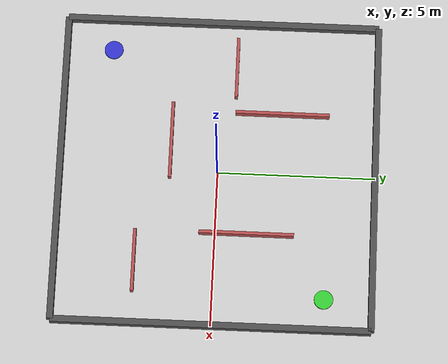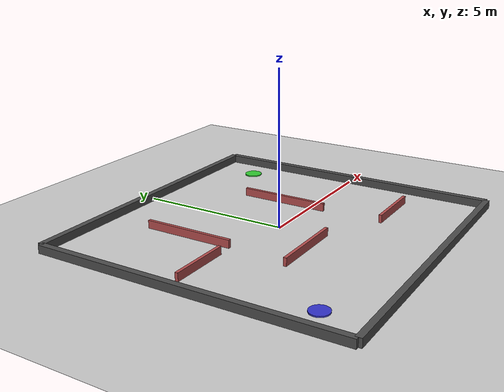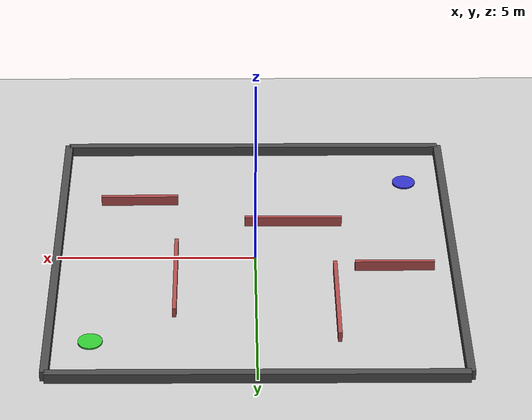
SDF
<?xml version="1.0" ?>
<!-- TurtleBot3 Maze Environment - Compatible with Gazebo 11 and newer -->
<sdf version="1.6">
  <world name="maze">
    <!-- Physics configuration - compatible with both Gazebo 11 and 9+ -->
    <physics type="ode">
      <max_step_size>0.001</max_step_size>
      <real_time_factor>1</real_time_factor>
      <real_time_update_rate>1000</real_time_update_rate>
    </physics>

    <!-- Gravity -->
    <gravity>0 0 -9.8</gravity>

    <!-- Magnetic field -->
    <magnetic_field>0 0 0</magnetic_field>

    <!-- Atmosphere -->
    <atmosphere type="adiabatic"/>

    <!-- Include standard models -->
    <include>
      <uri>model://sun</uri>
    </include>

    <include>
      <uri>model://ground_plane</uri>
    </include>

    <!-- Outer boundary walls -->
    <!-- North wall -->
    <model name="wall_north">
      <pose>0.0 5.0 0.0 0 0 0</pose>
      <static>true</static>
      <link name="link">
        <inertial>
          <mass>1</mass>
          <inertia>
            <ixx>1</ixx>
            <iyy>1</iyy>
            <izz>1</izz>
          </inertia>
        </inertial>
        <collision name="collision">
          <geometry>
            <box>
              <size>10.0 0.2 0.5</size>
            </box>
          </geometry>
          <surface>
            <friction>
              <ode>
                <mu>0.5</mu>
                <mu2>0.5</mu2>
              </ode>
            </friction>
          </surface>
        </collision>
        <visual name="visual">
          <geometry>
            <box>
              <size>10.0 0.2 0.5</size>
            </box>
          </geometry>
          <material>
            <ambient>0.3 0.3 0.3 1</ambient>
            <diffuse>0.3 0.3 0.3 1</diffuse>
            <specular>0.1 0.1 0.1 1</specular>
            <emissive>0 0 0 0</emissive>
          </material>
        </visual>
      </link>
    </model>

    <!-- South wall -->
    <model name="wall_south">
      <pose>0.0 -5.0 0.0 0 0 0</pose>
      <static>true</static>
      <link name="link">
        <inertial>
          <mass>1</mass>
          <inertia>
            <ixx>1</ixx>
            <iyy>1</iyy>
            <izz>1</izz>
          </inertia>
        </inertial>
        <collision name="collision">
          <geometry>
            <box>
              <size>10.0 0.2 0.5</size>
            </box>
          </geometry>
          <surface>
            <friction>
              <ode>
                <mu>0.5</mu>
                <mu2>0.5</mu2>
              </ode>
            </friction>
          </surface>
        </collision>
        <visual name="visual">
          <geometry>
            <box>
              <size>10.0 0.2 0.5</size>
            </box>
          </geometry>
          <material>
            <ambient>0.3 0.3 0.3 1</ambient>
            <diffuse>0.3 0.3 0.3 1</diffuse>
            <specular>0.1 0.1 0.1 1</specular>
            <emissive>0 0 0 0</emissive>
          </material>
        </visual>
      </link>
    </model>

    <!-- East wall -->
    <model name="wall_east">
      <pose>5.0 0.0 0.0 0 0 0</pose>
      <static>true</static>
      <link name="link">
        <inertial>
          <mass>1</mass>
          <inertia>
            <ixx>1</ixx>
            <iyy>1</iyy>
            <izz>1</izz>
          </inertia>
        </inertial>
        <collision name="collision">
          <geometry>
            <box>
              <size>0.2 10.0 0.5</size>
            </box>
          </geometry>
          <surface>
            <friction>
              <ode>
                <mu>0.5</mu>
                <mu2>0.5</mu2>
              </ode>
            </friction>
          </surface>
        </collision>
        <visual name="visual">
          <geometry>
            <box>
              <size>0.2 10.0 0.5</size>
            </box>
          </geometry>
          <material>
            <ambient>0.3 0.3 0.3 1</ambient>
            <diffuse>0.3 0.3 0.3 1</diffuse>
            <specular>0.1 0.1 0.1 1</specular>
            <emissive>0 0 0 0</emissive>
          </material>
        </visual>
      </link>
    </model>

    <!-- West wall -->
    <model name="wall_west">
      <pose>-5.0 0.0 0.0 0 0 0</pose>
      <static>true</static>
      <link name="link">
        <inertial>
          <mass>1</mass>
          <inertia>
            <ixx>1</ixx>
            <iyy>1</iyy>
            <izz>1</izz>
          </inertia>
        </inertial>
        <collision name="collision">
          <geometry>
            <box>
              <size>0.2 10.0 0.5</size>
            </box>
          </geometry>
          <surface>
            <friction>
              <ode>
                <mu>0.5</mu>
                <mu2>0.5</mu2>
              </ode>
            </friction>
          </surface>
        </collision>
        <visual name="visual">
          <geometry>
            <box>
              <size>0.2 10.0 0.5</size>
            </box>
          </geometry>
          <material>
            <ambient>0.3 0.3 0.3 1</ambient>
            <diffuse>0.3 0.3 0.3 1</diffuse>
            <specular>0.1 0.1 0.1 1</specular>
            <emissive>0 0 0 0</emissive>
          </material>
        </visual>
      </link>
    </model>

    <!-- Interior maze walls -->
    <!-- Vertical walls -->
    <model name="wall_1">
      <pose>-2.0 2.0 0.0 0 0 1.57</pose>
      <static>true</static>
      <link name="link">
        <inertial>
          <mass>1</mass>
          <inertia>
            <ixx>1</ixx>
            <iyy>1</iyy>
            <izz>1</izz>
          </inertia>
        </inertial>
        <collision name="collision">
          <geometry>
            <box>
              <size>3.0 0.1 0.5</size>
            </box>
          </geometry>
          <surface>
            <friction>
              <ode>
                <mu>0.5</mu>
                <mu2>0.5</mu2>
              </ode>
            </friction>
          </surface>
        </collision>
        <visual name="visual">
          <geometry>
            <box>
              <size>3.0 0.1 0.5</size>
            </box>
          </geometry>
          <material>
            <ambient>0.7 0.3 0.3 1</ambient>
            <diffuse>0.7 0.3 0.3 1</diffuse>
            <specular>0.2 0.2 0.2 1</specular>
            <emissive>0 0 0 0</emissive>
          </material>
        </visual>
      </link>
    </model>

    <model name="wall_2">
      <pose>2.0 1.0 0.0 0 0 1.57</pose>
      <static>true</static>
      <link name="link">
        <inertial>
          <mass>1</mass>
          <inertia>
            <ixx>1</ixx>
            <iyy>1</iyy>
            <izz>1</izz>
          </inertia>
        </inertial>
        <collision name="collision">
          <geometry>
            <box>
              <size>3.0 0.1 0.5</size>
            </box>
          </geometry>
          <surface>
            <friction>
              <ode>
                <mu>0.5</mu>
                <mu2>0.5</mu2>
              </ode>
            </friction>
          </surface>
        </collision>
        <visual name="visual">
          <geometry>
            <box>
              <size>3.0 0.1 0.5</size>
            </box>
          </geometry>
          <material>
            <ambient>0.7 0.3 0.3 1</ambient>
            <diffuse>0.7 0.3 0.3 1</diffuse>
            <specular>0.2 0.2 0.2 1</specular>
            <emissive>0 0 0 0</emissive>
          </material>
        </visual>
      </link>
    </model>

    <!-- Horizontal walls -->
    <model name="wall_3">
      <pose>-1.0 -1.5 0.0 0 0 0</pose>
      <static>true</static>
      <link name="link">
        <inertial>
          <mass>1</mass>
          <inertia>
            <ixx>1</ixx>
            <iyy>1</iyy>
            <izz>1</izz>
          </inertia>
        </inertial>
        <collision name="collision">
          <geometry>
            <box>
              <size>2.5 0.1 0.5</size>
            </box>
          </geometry>
          <surface>
            <friction>
              <ode>
                <mu>0.5</mu>
                <mu2>0.5</mu2>
              </ode>
            </friction>
          </surface>
        </collision>
        <visual name="visual">
          <geometry>
            <box>
              <size>2.5 0.1 0.5</size>
            </box>
          </geometry>
          <material>
            <ambient>0.7 0.3 0.3 1</ambient>
            <diffuse>0.7 0.3 0.3 1</diffuse>
            <specular>0.2 0.2 0.2 1</specular>
            <emissive>0 0 0 0</emissive>
          </material>
        </visual>
      </link>
    </model>

    <model name="wall_4">
      <pose>3.0 -2.5 0.0 0 0 0</pose>
      <static>true</static>
      <link name="link">
        <inertial>
          <mass>1</mass>
          <inertia>
            <ixx>1</ixx>
            <iyy>1</iyy>
            <izz>1</izz>
          </inertia>
        </inertial>
        <collision name="collision">
          <geometry>
            <box>
              <size>2.0 0.1 0.5</size>
            </box>
          </geometry>
          <surface>
            <friction>
              <ode>
                <mu>0.5</mu>
                <mu2>0.5</mu2>
              </ode>
            </friction>
          </surface>
        </collision>
        <visual name="visual">
          <geometry>
            <box>
              <size>2.0 0.1 0.5</size>
            </box>
          </geometry>
          <material>
            <ambient>0.7 0.3 0.3 1</ambient>
            <diffuse>0.7 0.3 0.3 1</diffuse>
            <specular>0.2 0.2 0.2 1</specular>
            <emissive>0 0 0 0</emissive>
          </material>
        </visual>
      </link>
    </model>

    <model name="wall_5">
      <pose>-3.5 0.5 0.0 0 0 0</pose>
      <static>true</static>
      <link name="link">
        <inertial>
          <mass>1</mass>
          <inertia>
            <ixx>1</ixx>
            <iyy>1</iyy>
            <izz>1</izz>
          </inertia>
        </inertial>
        <collision name="collision">
          <geometry>
            <box>
              <size>2.0 0.1 0.5</size>
            </box>
          </geometry>
          <surface>
            <friction>
              <ode>
                <mu>0.5</mu>
                <mu2>0.5</mu2>
              </ode>
            </friction>
          </surface>
        </collision>
        <visual name="visual">
          <geometry>
            <box>
              <size>2.0 0.1 0.5</size>
            </box>
          </geometry>
          <material>
            <ambient>0.7 0.3 0.3 1</ambient>
            <diffuse>0.7 0.3 0.3 1</diffuse>
            <specular>0.2 0.2 0.2 1</specular>
            <emissive>0 0 0 0</emissive>
          </material>
        </visual>
      </link>
    </model>

    <!-- Goal marker -->
    <model name="goal_marker">
      <pose>4.0 3.5 0.0 0 0 0</pose>
      <static>true</static>
      <link name="link">
        <inertial>
          <mass>1</mass>
          <inertia>
            <ixx>1</ixx>
            <iyy>1</iyy>
            <izz>1</izz>
          </inertia>
        </inertial>
        <collision name="collision">
          <geometry>
            <cylinder>
              <radius>0.3</radius>
              <length>0.05</length>
            </cylinder>
          </geometry>
        </collision>
        <visual name="visual">
          <geometry>
            <cylinder>
              <radius>0.3</radius>
              <length>0.05</length>
            </cylinder>
          </geometry>
          <material>
            <ambient>0.2 0.8 0.2 1</ambient>
            <diffuse>0.2 0.8 0.2 1</diffuse>
            <specular>0.3 0.3 0.3 1</specular>
            <emissive>0 0 0 0</emissive>
          </material>
        </visual>
      </link>
    </model>

    <!-- Start marker -->
    <model name="start_marker">
      <pose>-4.0 -3.5 0.0 0 0 0</pose>
      <static>true</static>
      <link name="link">
        <inertial>
          <mass>1</mass>
          <inertia>
            <ixx>1</ixx>
            <iyy>1</iyy>
            <izz>1</izz>
          </inertia>
        </inertial>
        <collision name="collision">
          <geometry>
            <cylinder>
              <radius>0.3</radius>
              <length>0.05</length>
            </cylinder>
          </geometry>
        </collision>
        <visual name="visual">
          <geometry>
            <cylinder>
              <radius>0.3</radius>
              <length>0.05</length>
            </cylinder>
          </geometry>
          <material>
            <ambient>0.2 0.2 0.8 1</ambient>
            <diffuse>0.2 0.2 0.8 1</diffuse>
            <specular>0.3 0.3 0.3 1</specular>
            <emissive>0 0 0 0</emissive>
          </material>
        </visual>
      </link>
    </model>
  </world>
</sdf>
